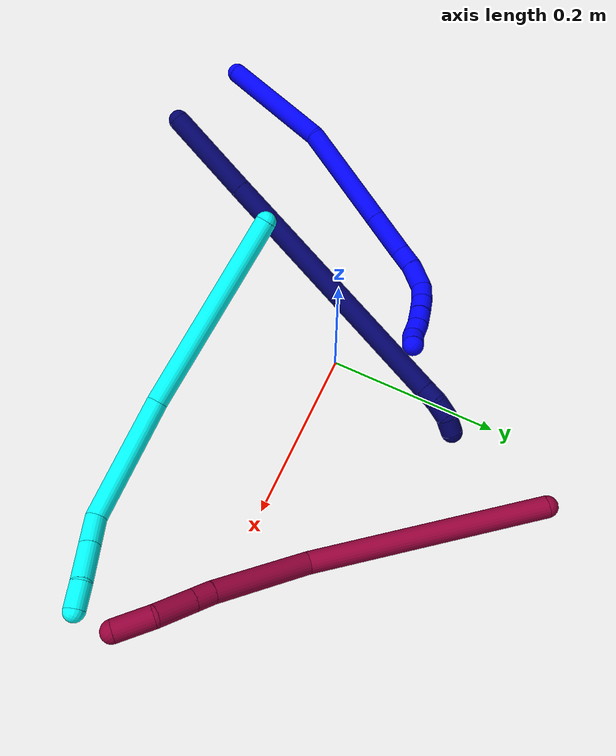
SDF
<sdf version="1.7">
 <world name="default">
  <model name="photoneo_s_sensor">
   <static>1</static>
   <pose>0 0 2 1.57079 1.57079 3.14159</pose>
   <link name="link">
    <inertial><mass>0.1</mass></inertial>
    <sensor name="sensor" type="depth">
     <update_rate>30</update_rate>
     <camera>
      <horizontal_fov>1.22</horizontal_fov>
      <image><width>1920</width><height>1200</height><format>B8G8R8</format></image>
      <clip><near>0.1</near><far>4</far></clip>
      <depth_camera><output>points</output></depth_camera>
     </camera>
     <plugin name="camera_plugin" filename="libgazebo_ros_depth_camera.so">
      <baseline>0.2</baseline>
      <alwaysOn>1</alwaysOn>
      <updateRate>0.0</updateRate>
      <cameraName>camera_ir</cameraName>
      <imageTopicName>/camera/color/image_raw</imageTopicName>
      <cameraInfoTopicName>/camera/color/camera_info</cameraInfoTopicName>
      <depthImageTopicName>/camera/depth/image_raw</depthImageTopicName>
      <depthImageCameraInfoTopicName>/camera/depth/camera_info</depthImageCameraInfoTopicName>
      <pointCloudTopicName>/camera/depth/points</pointCloudTopicName>
      <frameName>fr_optical</frameName>
      <pointCloudCutoff>0.1</pointCloudCutoff>
      <pointCloudCutoffMax>2.0</pointCloudCutoffMax>
      <distortionK1>0</distortionK1>
      <distortionK2>0</distortionK2>
      <distortionK3>0</distortionK3>
      <distortionT1>0</distortionT1>
      <distortionT2>0</distortionT2>
      <CxPrime>0</CxPrime>
      <Cx>0</Cx>
      <Cy>0</Cy>
      <focalLength>0</focalLength>
      <hackBaseline>0</hackBaseline>
     </plugin>
    </sensor>
   </link>
  </model>
  <model name="bin">
   <static>1</static>
   <link name="bottom">
    <collision name="collision-bottom">
     <pose>0 0 -0.01 0 -0 0</pose>
     <geometry><box><size>0.8 0.6 0.02</size></box></geometry>
     <surface>
      <friction><ode><mu>100</mu><mu2>100</mu2></ode></friction>
      <contact><collide_bitmask>65535</collide_bitmask></contact>
     </surface>
    </collision>
   </link>
   <link name="west_wall">
    <collision name="collision-west_wall">
     <pose>-0.41 0 0.1 0 -0 0</pose>
     <geometry><box><size>0.02 0.6 0.2</size></box></geometry>
     <surface>
      <friction><ode><mu>100</mu><mu2>100</mu2></ode></friction>
      <contact><collide_bitmask>65535</collide_bitmask></contact>
     </surface>
    </collision>
   </link>
   <link name="east_wall">
    <collision name="collision-east_wall">
     <pose>0.41 0 0.1 0 -0 0</pose>
     <geometry><box><size>0.02 0.6 0.2</size></box></geometry>
     <surface>
      <friction><ode><mu>100</mu><mu2>100</mu2></ode></friction>
      <contact><collide_bitmask>65535</collide_bitmask></contact>
     </surface>
    </collision>
   </link>
   <link name="south_wall">
    <collision name="collision-south_wall">
     <pose>0 -0.31 0.1 0 -0 0</pose>
     <geometry><box><size>0.8 0.02 0.2</size></box></geometry>
     <surface>
      <friction><ode><mu>100</mu><mu2>100</mu2></ode></friction>
      <contact><collide_bitmask>65535</collide_bitmask></contact>
     </surface>
    </collision>
   </link>
   <link name="north_wall">
    <collision name="collision-north_wall">
     <pose>0 0.31 0.1 0 -0 0</pose>
     <geometry><box><size>0.8 0.02 0.2</size></box></geometry>
     <surface>
      <friction><ode><mu>100</mu><mu2>100</mu2></ode></friction>
      <contact><collide_bitmask>65535</collide_bitmask></contact>
     </surface>
    </collision>
   </link>
  </model>
  <model name="1">
   <static>0</static>
   <link name="1">
    <collision name="collision-cylinder-e_1_1_4">
     <pose>0.00219 0.005585 -0.075692 -3.06794 0.028842 -0.746268</pose>
     <geometry><cylinder><radius>0.0125</radius><length>0.151858</length></cylinder></geometry>
     <surface>
      <friction><ode><mu>1.16</mu><mu2>1.16</mu2><slip1>0</slip1><slip2>0</slip2></ode></friction>
      <contact><ode><kp>1e+06</kp><kd>1</kd><max_vel>0</max_vel><min_depth>0.001</min_depth></ode></contact>
     </surface>
    </collision>
    <visual name="visual-cylinder-e_1_1_4">
     <pose>0.00219 0.005585 -0.075692 -3.06794 0.028842 -0.746268</pose>
     <geometry><cylinder><radius>0.0125</radius><length>0.151858</length></cylinder></geometry>
     <material><ambient>0 0 1 1</ambient></material>
    </visual>
    <collision name="collision-cylinder-e_2_4_5">
     <pose>0.018191 0.00064 -0.21612 2.98035 0.207553 1.82202</pose>
     <geometry><cylinder><radius>0.0125</radius><length>0.134052</length></cylinder></geometry>
     <surface>
      <friction><ode><mu>1.16</mu><mu2>1.16</mu2><slip1>0</slip1><slip2>0</slip2></ode></friction>
      <contact><ode><kp>1e+06</kp><kd>1</kd><max_vel>0</max_vel><min_depth>0.001</min_depth></ode></contact>
     </surface>
    </collision>
    <visual name="visual-cylinder-e_2_4_5">
     <pose>0.018191 0.00064 -0.21612 2.98035 0.207553 1.82202</pose>
     <geometry><cylinder><radius>0.0125</radius><length>0.134052</length></cylinder></geometry>
     <material><ambient>0 0 1 1</ambient></material>
    </visual>
    <collision name="collision-cylinder-e_3_5_6">
     <pose>0.037697 -0.014154 -0.307388 2.98225 0.208814 1.83939</pose>
     <geometry><cylinder><radius>0.0125</radius><length>0.054936</length></cylinder></geometry>
     <surface>
      <friction><ode><mu>1.16</mu><mu2>1.16</mu2><slip1>0</slip1><slip2>0</slip2></ode></friction>
      <contact><ode><kp>1e+06</kp><kd>1</kd><max_vel>0</max_vel><min_depth>0.001</min_depth></ode></contact>
     </surface>
    </collision>
    <visual name="visual-cylinder-e_3_5_6">
     <pose>0.037697 -0.014154 -0.307388 2.98225 0.208814 1.83939</pose>
     <geometry><cylinder><radius>0.0125</radius><length>0.054936</length></cylinder></geometry>
     <material><ambient>0 0 1 1</ambient></material>
    </visual>
    <collision name="collision-cylinder-e_4_6_7">
     <pose>0.046482 -0.016706 -0.346055 -3.00151 0.247018 -2.11281</pose>
     <geometry><cylinder><radius>0.0125</radius><length>0.025281</length></cylinder></geometry>
     <surface>
      <friction><ode><mu>1.16</mu><mu2>1.16</mu2><slip1>0</slip1><slip2>0</slip2></ode></friction>
      <contact><ode><kp>1e+06</kp><kd>1</kd><max_vel>0</max_vel><min_depth>0.001</min_depth></ode></contact>
     </surface>
    </collision>
    <visual name="visual-cylinder-e_4_6_7">
     <pose>0.046482 -0.016706 -0.346055 -3.00151 0.247018 -2.11281</pose>
     <geometry><cylinder><radius>0.0125</radius><length>0.025281</length></cylinder></geometry>
     <material><ambient>0 0 1 1</ambient></material>
    </visual>
    <collision name="collision-cylinder-e_5_7_8">
     <pose>0.056518 -0.013512 -0.372888 -3.04106 0.439521 -2.69854</pose>
     <geometry><cylinder><radius>0.0125</radius><length>0.032644</length></cylinder></geometry>
     <surface>
      <friction><ode><mu>1.16</mu><mu2>1.16</mu2><slip1>0</slip1><slip2>0</slip2></ode></friction>
      <contact><ode><kp>1e+06</kp><kd>1</kd><max_vel>0</max_vel><min_depth>0.001</min_depth></ode></contact>
     </surface>
    </collision>
    <visual name="visual-cylinder-e_5_7_8">
     <pose>0.056518 -0.013512 -0.372888 -3.04106 0.439521 -2.69854</pose>
     <geometry><cylinder><radius>0.0125</radius><length>0.032644</length></cylinder></geometry>
     <material><ambient>0 0 1 1</ambient></material>
    </visual>
    <collision name="collision-cylinder-e_6_8_9">
     <pose>0.070556 -0.0082 -0.394276 -2.62172 0.743742 -1.94463</pose>
     <geometry><cylinder><radius>0.0125</radius><length>0.020954</length></cylinder></geometry>
     <surface>
      <friction><ode><mu>1.16</mu><mu2>1.16</mu2><slip1>0</slip1><slip2>0</slip2></ode></friction>
      <contact><ode><kp>1e+06</kp><kd>1</kd><max_vel>0</max_vel><min_depth>0.001</min_depth></ode></contact>
     </surface>
    </collision>
    <visual name="visual-cylinder-e_6_8_9">
     <pose>0.070556 -0.0082 -0.394276 -2.62172 0.743742 -1.94463</pose>
     <geometry><cylinder><radius>0.0125</radius><length>0.020954</length></cylinder></geometry>
     <material><ambient>0 0 1 1</ambient></material>
    </visual>
    <collision name="collision-cylinder-e_7_9_10">
     <pose>0.084918 0.00016 -0.406292 -2.4367 0.804859 -1.71637</pose>
     <geometry><cylinder><radius>0.0125</radius><length>0.020168</length></cylinder></geometry>
     <surface>
      <friction><ode><mu>1.16</mu><mu2>1.16</mu2><slip1>0</slip1><slip2>0</slip2></ode></friction>
      <contact><ode><kp>1e+06</kp><kd>1</kd><max_vel>0</max_vel><min_depth>0.001</min_depth></ode></contact>
     </surface>
    </collision>
    <visual name="visual-cylinder-e_7_9_10">
     <pose>0.084918 0.00016 -0.406292 -2.4367 0.804859 -1.71637</pose>
     <geometry><cylinder><radius>0.0125</radius><length>0.020168</length></cylinder></geometry>
     <material><ambient>0 0 1 1</ambient></material>
    </visual>
    <collision name="collision-cylinder-e_8_10_11">
     <pose>0.099942 0.008403 -0.416784 -2.51842 0.883781 -1.94616</pose>
     <geometry><cylinder><radius>0.0125</radius><length>0.020064</length></cylinder></geometry>
     <surface>
      <friction><ode><mu>1.16</mu><mu2>1.16</mu2><slip1>0</slip1><slip2>0</slip2></ode></friction>
      <contact><ode><kp>1e+06</kp><kd>1</kd><max_vel>0</max_vel><min_depth>0.001</min_depth></ode></contact>
     </surface>
    </collision>
    <visual name="visual-cylinder-e_8_10_11">
     <pose>0.099942 0.008403 -0.416784 -2.51842 0.883781 -1.94616</pose>
     <geometry><cylinder><radius>0.0125</radius><length>0.020064</length></cylinder></geometry>
     <material><ambient>0 0 1 1</ambient></material>
    </visual>
    <collision name="collision-cylinder-e_9_11_12">
     <pose>0.115711 0.01677 -0.425735 -2.25349 0.928219 -1.62166</pose>
     <geometry><cylinder><radius>0.0125</radius><length>0.020019</length></cylinder></geometry>
     <surface>
      <friction><ode><mu>1.16</mu><mu2>1.16</mu2><slip1>0</slip1><slip2>0</slip2></ode></friction>
      <contact><ode><kp>1e+06</kp><kd>1</kd><max_vel>0</max_vel><min_depth>0.001</min_depth></ode></contact>
     </surface>
    </collision>
    <visual name="visual-cylinder-e_9_11_12">
     <pose>0.115711 0.01677 -0.425735 -2.25349 0.928219 -1.62166</pose>
     <geometry><cylinder><radius>0.0125</radius><length>0.020019</length></cylinder></geometry>
     <material><ambient>0 0 1 1</ambient></material>
    </visual>
    <collision name="collision-cylinder-e_10_12_2">
     <pose>0.12928 0.027926 -0.434724 -2.24594 0.588289 -1.12525</pose>
     <geometry><cylinder><radius>0.0125</radius><length>0.020023</length></cylinder></geometry>
     <surface>
      <friction><ode><mu>1.16</mu><mu2>1.16</mu2><slip1>0</slip1><slip2>0</slip2></ode></friction>
      <contact><ode><kp>1e+06</kp><kd>1</kd><max_vel>0</max_vel><min_depth>0.001</min_depth></ode></contact>
     </surface>
    </collision>
    <visual name="visual-cylinder-e_10_12_2">
     <pose>0.12928 0.027926 -0.434724 -2.24594 0.588289 -1.12525</pose>
     <geometry><cylinder><radius>0.0125</radius><length>0.020023</length></cylinder></geometry>
     <material><ambient>0 0 1 1</ambient></material>
    </visual>
    <collision name="collision-sphere-2">
     <pose>0.134836 0.034427 -0.43993 0 -0 0</pose>
     <geometry><sphere><radius>0.0125</radius></sphere></geometry>
     <surface>
      <friction><ode><mu>1.16</mu><mu2>1.16</mu2><slip1>0</slip1><slip2>0</slip2></ode></friction>
      <contact><ode><kp>1e+06</kp><kd>1</kd><max_vel>0</max_vel><min_depth>0.001</min_depth></ode></contact>
     </surface>
    </collision>
    <visual name="visual-sphere-2">
     <pose>0.134836 0.034427 -0.43993 0 -0 0</pose>
     <geometry><sphere><radius>0.0125</radius></sphere></geometry>
     <material><ambient>0 0 1 1</ambient></material>
    </visual>
    <collision name="collision-sphere-12">
     <pose>0.123725 0.021424 -0.429519 0 -0 0</pose>
     <geometry><sphere><radius>0.0125</radius></sphere></geometry>
     <surface>
      <friction><ode><mu>1.16</mu><mu2>1.16</mu2><slip1>0</slip1><slip2>0</slip2></ode></friction>
      <contact><ode><kp>1e+06</kp><kd>1</kd><max_vel>0</max_vel><min_depth>0.001</min_depth></ode></contact>
     </surface>
    </collision>
    <visual name="visual-sphere-12">
     <pose>0.123725 0.021424 -0.429519 0 -0 0</pose>
     <geometry><sphere><radius>0.0125</radius></sphere></geometry>
     <material><ambient>0 0 1 1</ambient></material>
    </visual>
    <collision name="collision-sphere-11">
     <pose>0.107698 0.012116 -0.42195 0 -0 0</pose>
     <geometry><sphere><radius>0.0125</radius></sphere></geometry>
     <surface>
      <friction><ode><mu>1.16</mu><mu2>1.16</mu2><slip1>0</slip1><slip2>0</slip2></ode></friction>
      <contact><ode><kp>1e+06</kp><kd>1</kd><max_vel>0</max_vel><min_depth>0.001</min_depth></ode></contact>
     </surface>
    </collision>
    <visual name="visual-sphere-11">
     <pose>0.107698 0.012116 -0.42195 0 -0 0</pose>
     <geometry><sphere><radius>0.0125</radius></sphere></geometry>
     <material><ambient>0 0 1 1</ambient></material>
    </visual>
    <collision name="collision-sphere-10">
     <pose>0.092186 0.00469 -0.411617 0 -0 0</pose>
     <geometry><sphere><radius>0.0125</radius></sphere></geometry>
     <surface>
      <friction><ode><mu>1.16</mu><mu2>1.16</mu2><slip1>0</slip1><slip2>0</slip2></ode></friction>
      <contact><ode><kp>1e+06</kp><kd>1</kd><max_vel>0</max_vel><min_depth>0.001</min_depth></ode></contact>
     </surface>
    </collision>
    <visual name="visual-sphere-10">
     <pose>0.092186 0.00469 -0.411617 0 -0 0</pose>
     <geometry><sphere><radius>0.0125</radius></sphere></geometry>
     <material><ambient>0 0 1 1</ambient></material>
    </visual>
    <collision name="collision-sphere-9">
     <pose>0.07765 -0.004369 -0.400968 0 -0 0</pose>
     <geometry><sphere><radius>0.0125</radius></sphere></geometry>
     <surface>
      <friction><ode><mu>1.16</mu><mu2>1.16</mu2><slip1>0</slip1><slip2>0</slip2></ode></friction>
      <contact><ode><kp>1e+06</kp><kd>1</kd><max_vel>0</max_vel><min_depth>0.001</min_depth></ode></contact>
     </surface>
    </collision>
    <visual name="visual-sphere-9">
     <pose>0.07765 -0.004369 -0.400968 0 -0 0</pose>
     <geometry><sphere><radius>0.0125</radius></sphere></geometry>
     <material><ambient>0 0 1 1</ambient></material>
    </visual>
    <collision name="collision-sphere-4">
     <pose>0.004379 0.011169 -0.151384 0 -0 0</pose>
     <geometry><sphere><radius>0.0125</radius></sphere></geometry>
     <surface>
      <friction><ode><mu>1.16</mu><mu2>1.16</mu2><slip1>0</slip1><slip2>0</slip2></ode></friction>
      <contact><ode><kp>1e+06</kp><kd>1</kd><max_vel>0</max_vel><min_depth>0.001</min_depth></ode></contact>
     </surface>
    </collision>
    <visual name="visual-sphere-4">
     <pose>0.004379 0.011169 -0.151384 0 -0 0</pose>
     <geometry><sphere><radius>0.0125</radius></sphere></geometry>
     <material><ambient>0 0 1 1</ambient></material>
    </visual>
    <collision name="collision-sphere-1">
     <geometry><sphere><radius>0.0125</radius></sphere></geometry>
     <surface>
      <friction><ode><mu>1.16</mu><mu2>1.16</mu2><slip1>0</slip1><slip2>0</slip2></ode></friction>
      <contact><ode><kp>1e+06</kp><kd>1</kd><max_vel>0</max_vel><min_depth>0.001</min_depth></ode></contact>
     </surface>
    </collision>
    <visual name="visual-sphere-1">
     <geometry><sphere><radius>0.0125</radius></sphere></geometry>
     <material><ambient>0 0 1 1</ambient></material>
    </visual>
    <collision name="collision-sphere-8">
     <pose>0.063463 -0.01203 -0.387584 0 -0 0</pose>
     <geometry><sphere><radius>0.0125</radius></sphere></geometry>
     <surface>
      <friction><ode><mu>1.16</mu><mu2>1.16</mu2><slip1>0</slip1><slip2>0</slip2></ode></friction>
      <contact><ode><kp>1e+06</kp><kd>1</kd><max_vel>0</max_vel><min_depth>0.001</min_depth></ode></contact>
     </surface>
    </collision>
    <visual name="visual-sphere-8">
     <pose>0.063463 -0.01203 -0.387584 0 -0 0</pose>
     <geometry><sphere><radius>0.0125</radius></sphere></geometry>
     <material><ambient>0 0 1 1</ambient></material>
    </visual>
    <collision name="collision-sphere-5">
     <pose>0.032003 -0.00989 -0.280857 0 -0 0</pose>
     <geometry><sphere><radius>0.0125</radius></sphere></geometry>
     <surface>
      <friction><ode><mu>1.16</mu><mu2>1.16</mu2><slip1>0</slip1><slip2>0</slip2></ode></friction>
      <contact><ode><kp>1e+06</kp><kd>1</kd><max_vel>0</max_vel><min_depth>0.001</min_depth></ode></contact>
     </surface>
    </collision>
    <visual name="visual-sphere-5">
     <pose>0.032003 -0.00989 -0.280857 0 -0 0</pose>
     <geometry><sphere><radius>0.0125</radius></sphere></geometry>
     <material><ambient>0 0 1 1</ambient></material>
    </visual>
    <collision name="collision-sphere-6">
     <pose>0.043391 -0.018418 -0.333919 0 -0 0</pose>
     <geometry><sphere><radius>0.0125</radius></sphere></geometry>
     <surface>
      <friction><ode><mu>1.16</mu><mu2>1.16</mu2><slip1>0</slip1><slip2>0</slip2></ode></friction>
      <contact><ode><kp>1e+06</kp><kd>1</kd><max_vel>0</max_vel><min_depth>0.001</min_depth></ode></contact>
     </surface>
    </collision>
    <visual name="visual-sphere-6">
     <pose>0.043391 -0.018418 -0.333919 0 -0 0</pose>
     <geometry><sphere><radius>0.0125</radius></sphere></geometry>
     <material><ambient>0 0 1 1</ambient></material>
    </visual>
    <collision name="collision-sphere-7">
     <pose>0.049573 -0.014995 -0.358192 0 -0 0</pose>
     <geometry><sphere><radius>0.0125</radius></sphere></geometry>
     <surface>
      <friction><ode><mu>1.16</mu><mu2>1.16</mu2><slip1>0</slip1><slip2>0</slip2></ode></friction>
      <contact><ode><kp>1e+06</kp><kd>1</kd><max_vel>0</max_vel><min_depth>0.001</min_depth></ode></contact>
     </surface>
    </collision>
    <visual name="visual-sphere-7">
     <pose>0.049573 -0.014995 -0.358192 0 -0 0</pose>
     <geometry><sphere><radius>0.0125</radius></sphere></geometry>
     <material><ambient>0 0 1 1</ambient></material>
    </visual>
    <inertial>
     <pose>0.035927 0.000375 -0.240639 0 -0 0</pose>
     <mass>0.5</mass>
     <inertia>
      <ixx>0.00017</ixx>
      <ixy>0</ixy>
      <ixz>0</ixz>
      <iyy>-0.000144</iyy>
      <iyz>0</iyz>
      <izz>-8.7e-05</izz>
     </inertia>
    </inertial>
   </link>
   <pose>-0.314056 -0.288502 0.029176 1.59226 0.15198 -0.334648</pose>
  </model>
  <model name="3">
   <static>0</static>
   <link name="3">
    <collision name="collision-cylinder-e_1_1_4">
     <pose>0.027877 -0.010878 0.118489 0.091551 0.230136 0.010589</pose>
     <geometry><cylinder><radius>0.0125</radius><length>0.244419</length></cylinder></geometry>
     <surface>
      <friction><ode><mu>1.16</mu><mu2>1.16</mu2><slip1>0</slip1><slip2>0</slip2></ode></friction>
      <contact><ode><kp>1e+06</kp><kd>1</kd><max_vel>0</max_vel><min_depth>0.001</min_depth></ode></contact>
     </surface>
    </collision>
    <visual name="visual-cylinder-e_1_1_4">
     <pose>0.027877 -0.010878 0.118489 0.091551 0.230136 0.010589</pose>
     <geometry><cylinder><radius>0.0125</radius><length>0.244419</length></cylinder></geometry>
     <material><ambient>0.003922 1 0.996078 1</ambient></material>
    </visual>
    <collision name="collision-cylinder-e_2_4_5">
     <pose>0.046719 -0.025692 0.309992 0.053844 -0.12295 -0.003315</pose>
     <geometry><cylinder><radius>0.0125</radius><length>0.147352</length></cylinder></geometry>
     <surface>
      <friction><ode><mu>1.16</mu><mu2>1.16</mu2><slip1>0</slip1><slip2>0</slip2></ode></friction>
      <contact><ode><kp>1e+06</kp><kd>1</kd><max_vel>0</max_vel><min_depth>0.001</min_depth></ode></contact>
     </surface>
    </collision>
    <visual name="visual-cylinder-e_2_4_5">
     <pose>0.046719 -0.025692 0.309992 0.053844 -0.12295 -0.003315</pose>
     <geometry><cylinder><radius>0.0125</radius><length>0.147352</length></cylinder></geometry>
     <material><ambient>0.003922 1 0.996078 1</ambient></material>
    </visual>
    <collision name="collision-cylinder-e_3_5_6">
     <pose>0.028772 -0.026774 0.397745 -0.19117 -0.535663 0.05261</pose>
     <geometry><cylinder><radius>0.0125</radius><length>0.034916</length></cylinder></geometry>
     <surface>
      <friction><ode><mu>1.16</mu><mu2>1.16</mu2><slip1>0</slip1><slip2>0</slip2></ode></friction>
      <contact><ode><kp>1e+06</kp><kd>1</kd><max_vel>0</max_vel><min_depth>0.001</min_depth></ode></contact>
     </surface>
    </collision>
    <visual name="visual-cylinder-e_3_5_6">
     <pose>0.028772 -0.026774 0.397745 -0.19117 -0.535663 0.05261</pose>
     <geometry><cylinder><radius>0.0125</radius><length>0.034916</length></cylinder></geometry>
     <material><ambient>0.003922 1 0.996078 1</ambient></material>
    </visual>
    <collision name="collision-cylinder-e_4_6_7">
     <pose>0.008912 -0.020369 0.430608 -0.193549 -0.535142 0.053214</pose>
     <geometry><cylinder><radius>0.0125</radius><length>0.042942</length></cylinder></geometry>
     <surface>
      <friction><ode><mu>1.16</mu><mu2>1.16</mu2><slip1>0</slip1><slip2>0</slip2></ode></friction>
      <contact><ode><kp>1e+06</kp><kd>1</kd><max_vel>0</max_vel><min_depth>0.001</min_depth></ode></contact>
     </surface>
    </collision>
    <visual name="visual-cylinder-e_4_6_7">
     <pose>0.008912 -0.020369 0.430608 -0.193549 -0.535142 0.053214</pose>
     <geometry><cylinder><radius>0.0125</radius><length>0.042942</length></cylinder></geometry>
     <material><ambient>0.003922 1 0.996078 1</ambient></material>
    </visual>
    <collision name="collision-cylinder-e_5_7_2">
     <pose>-0.006669 -0.014187 0.462953 -0.182887 -0.309971 0.028652</pose>
     <geometry><cylinder><radius>0.0125</radius><length>0.030372</length></cylinder></geometry>
     <surface>
      <friction><ode><mu>1.16</mu><mu2>1.16</mu2><slip1>0</slip1><slip2>0</slip2></ode></friction>
      <contact><ode><kp>1e+06</kp><kd>1</kd><max_vel>0</max_vel><min_depth>0.001</min_depth></ode></contact>
     </surface>
    </collision>
    <visual name="visual-cylinder-e_5_7_2">
     <pose>-0.006669 -0.014187 0.462953 -0.182887 -0.309971 0.028652</pose>
     <geometry><cylinder><radius>0.0125</radius><length>0.030372</length></cylinder></geometry>
     <material><ambient>0.003922 1 0.996078 1</ambient></material>
    </visual>
    <collision name="collision-sphere-2">
     <pose>-0.011301 -0.011556 0.477175 0 -0 0</pose>
     <geometry><sphere><radius>0.0125</radius></sphere></geometry>
     <surface>
      <friction><ode><mu>1.16</mu><mu2>1.16</mu2><slip1>0</slip1><slip2>0</slip2></ode></friction>
      <contact><ode><kp>1e+06</kp><kd>1</kd><max_vel>0</max_vel><min_depth>0.001</min_depth></ode></contact>
     </surface>
    </collision>
    <visual name="visual-sphere-2">
     <pose>-0.011301 -0.011556 0.477175 0 -0 0</pose>
     <geometry><sphere><radius>0.0125</radius></sphere></geometry>
     <material><ambient>0.003922 1 0.996078 1</ambient></material>
    </visual>
    <collision name="collision-sphere-7">
     <pose>-0.002037 -0.016817 0.448732 0 -0 0</pose>
     <geometry><sphere><radius>0.0125</radius></sphere></geometry>
     <surface>
      <friction><ode><mu>1.16</mu><mu2>1.16</mu2><slip1>0</slip1><slip2>0</slip2></ode></friction>
      <contact><ode><kp>1e+06</kp><kd>1</kd><max_vel>0</max_vel><min_depth>0.001</min_depth></ode></contact>
     </surface>
    </collision>
    <visual name="visual-sphere-7">
     <pose>-0.002037 -0.016817 0.448732 0 -0 0</pose>
     <geometry><sphere><radius>0.0125</radius></sphere></geometry>
     <material><ambient>0.003922 1 0.996078 1</ambient></material>
    </visual>
    <collision name="collision-sphere-6">
     <pose>0.019862 -0.023922 0.412484 0 -0 0</pose>
     <geometry><sphere><radius>0.0125</radius></sphere></geometry>
     <surface>
      <friction><ode><mu>1.16</mu><mu2>1.16</mu2><slip1>0</slip1><slip2>0</slip2></ode></friction>
      <contact><ode><kp>1e+06</kp><kd>1</kd><max_vel>0</max_vel><min_depth>0.001</min_depth></ode></contact>
     </surface>
    </collision>
    <visual name="visual-sphere-6">
     <pose>0.019862 -0.023922 0.412484 0 -0 0</pose>
     <geometry><sphere><radius>0.0125</radius></sphere></geometry>
     <material><ambient>0.003922 1 0.996078 1</ambient></material>
    </visual>
    <collision name="collision-sphere-5">
     <pose>0.037683 -0.029627 0.383006 0 -0 0</pose>
     <geometry><sphere><radius>0.0125</radius></sphere></geometry>
     <surface>
      <friction><ode><mu>1.16</mu><mu2>1.16</mu2><slip1>0</slip1><slip2>0</slip2></ode></friction>
      <contact><ode><kp>1e+06</kp><kd>1</kd><max_vel>0</max_vel><min_depth>0.001</min_depth></ode></contact>
     </surface>
    </collision>
    <visual name="visual-sphere-5">
     <pose>0.037683 -0.029627 0.383006 0 -0 0</pose>
     <geometry><sphere><radius>0.0125</radius></sphere></geometry>
     <material><ambient>0.003922 1 0.996078 1</ambient></material>
    </visual>
    <collision name="collision-sphere-1">
     <geometry><sphere><radius>0.0125</radius></sphere></geometry>
     <surface>
      <friction><ode><mu>1.16</mu><mu2>1.16</mu2><slip1>0</slip1><slip2>0</slip2></ode></friction>
      <contact><ode><kp>1e+06</kp><kd>1</kd><max_vel>0</max_vel><min_depth>0.001</min_depth></ode></contact>
     </surface>
    </collision>
    <visual name="visual-sphere-1">
     <geometry><sphere><radius>0.0125</radius></sphere></geometry>
     <material><ambient>0.003922 1 0.996078 1</ambient></material>
    </visual>
    <collision name="collision-sphere-4">
     <pose>0.055754 -0.021756 0.236978 0 -0 0</pose>
     <geometry><sphere><radius>0.0125</radius></sphere></geometry>
     <surface>
      <friction><ode><mu>1.16</mu><mu2>1.16</mu2><slip1>0</slip1><slip2>0</slip2></ode></friction>
      <contact><ode><kp>1e+06</kp><kd>1</kd><max_vel>0</max_vel><min_depth>0.001</min_depth></ode></contact>
     </surface>
    </collision>
    <visual name="visual-sphere-4">
     <pose>0.055754 -0.021756 0.236978 0 -0 0</pose>
     <geometry><sphere><radius>0.0125</radius></sphere></geometry>
     <material><ambient>0.003922 1 0.996078 1</ambient></material>
    </visual>
    <inertial>
     <pose>0.029765 -0.01737 0.242156 0 -0 0</pose>
     <mass>0.5</mass>
     <inertia><ixx>0.001491</ixx><ixy>0</ixy><ixz>0</ixz><iyy>0.001521</iyy><iyz>0</iyz><izz>-8e-05</izz></inertia>
    </inertial>
   </link>
   <pose>-0.08828 -0.131343 0.100443 -2.03067 1.1931 -1.97364</pose>
  </model>
  <model name="7">
   <static>0</static>
   <link name="7">
    <collision name="collision-cylinder-e_1_1_4">
     <pose>0.025348 0.04501 -0.026652 -2.10541 0.45124 -0.765589</pose>
     <geometry><cylinder><radius>0.0125</radius><length>0.116255</length></cylinder></geometry>
     <surface>
      <friction><ode><mu>1.16</mu><mu2>1.16</mu2><slip1>0</slip1><slip2>0</slip2></ode></friction>
      <contact><ode><kp>1e+06</kp><kd>1</kd><max_vel>0</max_vel><min_depth>0.001</min_depth></ode></contact>
     </surface>
    </collision>
    <visual name="visual-cylinder-e_1_1_4">
     <pose>0.025348 0.04501 -0.026652 -2.10541 0.45124 -0.765589</pose>
     <geometry><cylinder><radius>0.0125</radius><length>0.116255</length></cylinder></geometry>
     <material><ambient>0.003922 0 0.403922 1</ambient></material>
    </visual>
    <collision name="collision-cylinder-e_2_4_5">
     <pose>0.122808 0.216738 -0.123131 -2.07444 0.462377 -0.758401</pose>
     <geometry><cylinder><radius>0.0125</radius><length>0.323316</length></cylinder></geometry>
     <surface>
      <friction><ode><mu>1.16</mu><mu2>1.16</mu2><slip1>0</slip1><slip2>0</slip2></ode></friction>
      <contact><ode><kp>1e+06</kp><kd>1</kd><max_vel>0</max_vel><min_depth>0.001</min_depth></ode></contact>
     </surface>
    </collision>
    <visual name="visual-cylinder-e_2_4_5">
     <pose>0.122808 0.216738 -0.123131 -2.07444 0.462377 -0.758401</pose>
     <geometry><cylinder><radius>0.0125</radius><length>0.323316</length></cylinder></geometry>
     <material><ambient>0.003922 0 0.403922 1</ambient></material>
    </visual>
    <collision name="collision-cylinder-e_3_5_6">
     <pose>0.200161 0.351536 -0.19596 -1.92653 0.546279 -0.766069</pose>
     <geometry><cylinder><radius>0.0125</radius><length>0.020176</length></cylinder></geometry>
     <surface>
      <friction><ode><mu>1.16</mu><mu2>1.16</mu2><slip1>0</slip1><slip2>0</slip2></ode></friction>
      <contact><ode><kp>1e+06</kp><kd>1</kd><max_vel>0</max_vel><min_depth>0.001</min_depth></ode></contact>
     </surface>
    </collision>
    <visual name="visual-cylinder-e_3_5_6">
     <pose>0.200161 0.351536 -0.19596 -1.92653 0.546279 -0.766069</pose>
     <geometry><cylinder><radius>0.0125</radius><length>0.020176</length></cylinder></geometry>
     <material><ambient>0.003922 0 0.403922 1</ambient></material>
    </visual>
    <collision name="collision-cylinder-e_4_6_7">
     <pose>0.210316 0.366244 -0.204659 -2.28084 0.512252 -1.0368</pose>
     <geometry><cylinder><radius>0.0125</radius><length>0.020053</length></cylinder></geometry>
     <surface>
      <friction><ode><mu>1.16</mu><mu2>1.16</mu2><slip1>0</slip1><slip2>0</slip2></ode></friction>
      <contact><ode><kp>1e+06</kp><kd>1</kd><max_vel>0</max_vel><min_depth>0.001</min_depth></ode></contact>
     </surface>
    </collision>
    <visual name="visual-cylinder-e_4_6_7">
     <pose>0.210316 0.366244 -0.204659 -2.28084 0.512252 -1.0368</pose>
     <geometry><cylinder><radius>0.0125</radius><length>0.020053</length></cylinder></geometry>
     <material><ambient>0.003922 0 0.403922 1</ambient></material>
    </visual>
    <collision name="collision-cylinder-e_5_7_2">
     <pose>0.218675 0.376382 -0.219178 -2.76289 0.347956 -1.48433</pose>
     <geometry><cylinder><radius>0.0125</radius><length>0.0202</length></cylinder></geometry>
     <surface>
      <friction><ode><mu>1.16</mu><mu2>1.16</mu2><slip1>0</slip1><slip2>0</slip2></ode></friction>
      <contact><ode><kp>1e+06</kp><kd>1</kd><max_vel>0</max_vel><min_depth>0.001</min_depth></ode></contact>
     </surface>
    </collision>
    <visual name="visual-cylinder-e_5_7_2">
     <pose>0.218675 0.376382 -0.219178 -2.76289 0.347956 -1.48433</pose>
     <geometry><cylinder><radius>0.0125</radius><length>0.0202</length></cylinder></geometry>
     <material><ambient>0.003922 0 0.403922 1</ambient></material>
    </visual>
    <collision name="collision-sphere-2">
     <pose>0.222119 0.379892 -0.228 0 -0 0</pose>
     <geometry><sphere><radius>0.0125</radius></sphere></geometry>
     <surface>
      <friction><ode><mu>1.16</mu><mu2>1.16</mu2><slip1>0</slip1><slip2>0</slip2></ode></friction>
      <contact><ode><kp>1e+06</kp><kd>1</kd><max_vel>0</max_vel><min_depth>0.001</min_depth></ode></contact>
     </surface>
    </collision>
    <visual name="visual-sphere-2">
     <pose>0.222119 0.379892 -0.228 0 -0 0</pose>
     <geometry><sphere><radius>0.0125</radius></sphere></geometry>
     <material><ambient>0.003922 0 0.403922 1</ambient></material>
    </visual>
    <collision name="collision-sphere-7">
     <pose>0.215231 0.372871 -0.210356 0 -0 0</pose>
     <geometry><sphere><radius>0.0125</radius></sphere></geometry>
     <surface>
      <friction><ode><mu>1.16</mu><mu2>1.16</mu2><slip1>0</slip1><slip2>0</slip2></ode></friction>
      <contact><ode><kp>1e+06</kp><kd>1</kd><max_vel>0</max_vel><min_depth>0.001</min_depth></ode></contact>
     </surface>
    </collision>
    <visual name="visual-sphere-7">
     <pose>0.215231 0.372871 -0.210356 0 -0 0</pose>
     <geometry><sphere><radius>0.0125</radius></sphere></geometry>
     <material><ambient>0.003922 0 0.403922 1</ambient></material>
    </visual>
    <collision name="collision-sphere-6">
     <pose>0.205402 0.359616 -0.198962 0 -0 0</pose>
     <geometry><sphere><radius>0.0125</radius></sphere></geometry>
     <surface>
      <friction><ode><mu>1.16</mu><mu2>1.16</mu2><slip1>0</slip1><slip2>0</slip2></ode></friction>
      <contact><ode><kp>1e+06</kp><kd>1</kd><max_vel>0</max_vel><min_depth>0.001</min_depth></ode></contact>
     </surface>
    </collision>
    <visual name="visual-sphere-6">
     <pose>0.205402 0.359616 -0.198962 0 -0 0</pose>
     <geometry><sphere><radius>0.0125</radius></sphere></geometry>
     <material><ambient>0.003922 0 0.403922 1</ambient></material>
    </visual>
    <collision name="collision-sphere-5">
     <pose>0.19492 0.343456 -0.192958 0 -0 0</pose>
     <geometry><sphere><radius>0.0125</radius></sphere></geometry>
     <surface>
      <friction><ode><mu>1.16</mu><mu2>1.16</mu2><slip1>0</slip1><slip2>0</slip2></ode></friction>
      <contact><ode><kp>1e+06</kp><kd>1</kd><max_vel>0</max_vel><min_depth>0.001</min_depth></ode></contact>
     </surface>
    </collision>
    <visual name="visual-sphere-5">
     <pose>0.19492 0.343456 -0.192958 0 -0 0</pose>
     <geometry><sphere><radius>0.0125</radius></sphere></geometry>
     <material><ambient>0.003922 0 0.403922 1</ambient></material>
    </visual>
    <collision name="collision-sphere-1">
     <geometry><sphere><radius>0.0125</radius></sphere></geometry>
     <surface>
      <friction><ode><mu>1.16</mu><mu2>1.16</mu2><slip1>0</slip1><slip2>0</slip2></ode></friction>
      <contact><ode><kp>1e+06</kp><kd>1</kd><max_vel>0</max_vel><min_depth>0.001</min_depth></ode></contact>
     </surface>
    </collision>
    <visual name="visual-sphere-1">
     <geometry><sphere><radius>0.0125</radius></sphere></geometry>
     <material><ambient>0.003922 0 0.403922 1</ambient></material>
    </visual>
    <collision name="collision-sphere-4">
     <pose>0.050697 0.090021 -0.053304 0 -0 0</pose>
     <geometry><sphere><radius>0.0125</radius></sphere></geometry>
     <surface>
      <friction><ode><mu>1.16</mu><mu2>1.16</mu2><slip1>0</slip1><slip2>0</slip2></ode></friction>
      <contact><ode><kp>1e+06</kp><kd>1</kd><max_vel>0</max_vel><min_depth>0.001</min_depth></ode></contact>
     </surface>
    </collision>
    <visual name="visual-sphere-4">
     <pose>0.050697 0.090021 -0.053304 0 -0 0</pose>
     <geometry><sphere><radius>0.0125</radius></sphere></geometry>
     <material><ambient>0.003922 0 0.403922 1</ambient></material>
    </visual>
    <inertial>
     <pose>0.110652 0.194695 -0.110788 0 -0 0</pose>
     <mass>0.5</mass>
     <inertia>
      <ixx>0.000116</ixx>
      <ixy>0</ixy>
      <ixz>0</ixz>
      <iyy>-0.002045</iyy>
      <iyz>0</iyz>
      <izz>-0.003666</izz>
     </inertia>
    </inertial>
   </link>
   <pose>-0.167315 -0.287094 0.108159 0.209036 -0.245648 0.122728</pose>
  </model>
  <model name="8">
   <static>0</static>
   <link name="8">
    <collision name="collision-cylinder-e_1_1_4">
     <pose>0.04838 -0.098869 0.081601 0.880791 0.36087 0.171513</pose>
     <geometry><cylinder><radius>0.0125</radius><length>0.27404</length></cylinder></geometry>
     <surface>
      <friction><ode><mu>1.16</mu><mu2>1.16</mu2><slip1>0</slip1><slip2>0</slip2></ode></friction>
      <contact><ode><kp>1e+06</kp><kd>1</kd><max_vel>0</max_vel><min_depth>0.001</min_depth></ode></contact>
     </surface>
    </collision>
    <visual name="visual-cylinder-e_1_1_4">
     <pose>0.04838 -0.098869 0.081601 0.880791 0.36087 0.171513</pose>
     <geometry><cylinder><radius>0.0125</radius><length>0.27404</length></cylinder></geometry>
     <material><ambient>0.584314 0 0.227451 1</ambient></material>
    </visual>
    <collision name="collision-cylinder-e_2_4_5">
     <pose>0.128177 -0.218514 0.207521 0.438375 0.570625 0.130496</pose>
     <geometry><cylinder><radius>0.0125</radius><length>0.116323</length></cylinder></geometry>
     <surface>
      <friction><ode><mu>1.16</mu><mu2>1.16</mu2><slip1>0</slip1><slip2>0</slip2></ode></friction>
      <contact><ode><kp>1e+06</kp><kd>1</kd><max_vel>0</max_vel><min_depth>0.001</min_depth></ode></contact>
     </surface>
    </collision>
    <visual name="visual-cylinder-e_2_4_5">
     <pose>0.128177 -0.218514 0.207521 0.438375 0.570625 0.130496</pose>
     <geometry><cylinder><radius>0.0125</radius><length>0.116323</length></cylinder></geometry>
     <material><ambient>0.584314 0 0.227451 1</ambient></material>
    </visual>
    <collision name="collision-cylinder-e_3_5_6">
     <pose>0.166546 -0.243079 0.25999 0.435105 0.658363 0.150741</pose>
     <geometry><cylinder><radius>0.0125</radius><length>0.022727</length></cylinder></geometry>
     <surface>
      <friction><ode><mu>1.16</mu><mu2>1.16</mu2><slip1>0</slip1><slip2>0</slip2></ode></friction>
      <contact><ode><kp>1e+06</kp><kd>1</kd><max_vel>0</max_vel><min_depth>0.001</min_depth></ode></contact>
     </surface>
    </collision>
    <visual name="visual-cylinder-e_3_5_6">
     <pose>0.166546 -0.243079 0.25999 0.435105 0.658363 0.150741</pose>
     <geometry><cylinder><radius>0.0125</radius><length>0.022727</length></cylinder></geometry>
     <material><ambient>0.584314 0 0.227451 1</ambient></material>
    </visual>
    <collision name="collision-cylinder-e_4_6_7">
     <pose>0.186996 -0.253994 0.284072 0.420585 0.6583 0.14556</pose>
     <geometry><cylinder><radius>0.0125</radius><length>0.044126</length></cylinder></geometry>
     <surface>
      <friction><ode><mu>1.16</mu><mu2>1.16</mu2><slip1>0</slip1><slip2>0</slip2></ode></friction>
      <contact><ode><kp>1e+06</kp><kd>1</kd><max_vel>0</max_vel><min_depth>0.001</min_depth></ode></contact>
     </surface>
    </collision>
    <visual name="visual-cylinder-e_4_6_7">
     <pose>0.186996 -0.253994 0.284072 0.420585 0.6583 0.14556</pose>
     <geometry><cylinder><radius>0.0125</radius><length>0.044126</length></cylinder></geometry>
     <material><ambient>0.584314 0 0.227451 1</ambient></material>
    </visual>
    <collision name="collision-cylinder-e_5_7_2">
     <pose>0.210689 -0.275063 0.312623 0.835229 0.496823 0.224153</pose>
     <geometry><cylinder><radius>0.0125</radius><length>0.042784</length></cylinder></geometry>
     <surface>
      <friction><ode><mu>1.16</mu><mu2>1.16</mu2><slip1>0</slip1><slip2>0</slip2></ode></friction>
      <contact><ode><kp>1e+06</kp><kd>1</kd><max_vel>0</max_vel><min_depth>0.001</min_depth></ode></contact>
     </surface>
    </collision>
    <visual name="visual-cylinder-e_5_7_2">
     <pose>0.210689 -0.275063 0.312623 0.835229 0.496823 0.224153</pose>
     <geometry><cylinder><radius>0.0125</radius><length>0.042784</length></cylinder></geometry>
     <material><ambient>0.584314 0 0.227451 1</ambient></material>
    </visual>
    <collision name="collision-sphere-2">
     <pose>0.220886 -0.289007 0.325242 0 -0 0</pose>
     <geometry><sphere><radius>0.0125</radius></sphere></geometry>
     <surface>
      <friction><ode><mu>1.16</mu><mu2>1.16</mu2><slip1>0</slip1><slip2>0</slip2></ode></friction>
      <contact><ode><kp>1e+06</kp><kd>1</kd><max_vel>0</max_vel><min_depth>0.001</min_depth></ode></contact>
     </surface>
    </collision>
    <visual name="visual-sphere-2">
     <pose>0.220886 -0.289007 0.325242 0 -0 0</pose>
     <geometry><sphere><radius>0.0125</radius></sphere></geometry>
     <material><ambient>0.584314 0 0.227451 1</ambient></material>
    </visual>
    <collision name="collision-sphere-7">
     <pose>0.200493 -0.26112 0.300004 0 -0 0</pose>
     <geometry><sphere><radius>0.0125</radius></sphere></geometry>
     <surface>
      <friction><ode><mu>1.16</mu><mu2>1.16</mu2><slip1>0</slip1><slip2>0</slip2></ode></friction>
      <contact><ode><kp>1e+06</kp><kd>1</kd><max_vel>0</max_vel><min_depth>0.001</min_depth></ode></contact>
     </surface>
    </collision>
    <visual name="visual-sphere-7">
     <pose>0.200493 -0.26112 0.300004 0 -0 0</pose>
     <geometry><sphere><radius>0.0125</radius></sphere></geometry>
     <material><ambient>0.584314 0 0.227451 1</ambient></material>
    </visual>
    <collision name="collision-sphere-6">
     <pose>0.173498 -0.246868 0.268141 0 -0 0</pose>
     <geometry><sphere><radius>0.0125</radius></sphere></geometry>
     <surface>
      <friction><ode><mu>1.16</mu><mu2>1.16</mu2><slip1>0</slip1><slip2>0</slip2></ode></friction>
      <contact><ode><kp>1e+06</kp><kd>1</kd><max_vel>0</max_vel><min_depth>0.001</min_depth></ode></contact>
     </surface>
    </collision>
    <visual name="visual-sphere-6">
     <pose>0.173498 -0.246868 0.268141 0 -0 0</pose>
     <geometry><sphere><radius>0.0125</radius></sphere></geometry>
     <material><ambient>0.584314 0 0.227451 1</ambient></material>
    </visual>
    <collision name="collision-sphere-5">
     <pose>0.159593 -0.239291 0.251839 0 -0 0</pose>
     <geometry><sphere><radius>0.0125</radius></sphere></geometry>
     <surface>
      <friction><ode><mu>1.16</mu><mu2>1.16</mu2><slip1>0</slip1><slip2>0</slip2></ode></friction>
      <contact><ode><kp>1e+06</kp><kd>1</kd><max_vel>0</max_vel><min_depth>0.001</min_depth></ode></contact>
     </surface>
    </collision>
    <visual name="visual-sphere-5">
     <pose>0.159593 -0.239291 0.251839 0 -0 0</pose>
     <geometry><sphere><radius>0.0125</radius></sphere></geometry>
     <material><ambient>0.584314 0 0.227451 1</ambient></material>
    </visual>
    <collision name="collision-sphere-1">
     <geometry><sphere><radius>0.0125</radius></sphere></geometry>
     <surface>
      <friction><ode><mu>1.16</mu><mu2>1.16</mu2><slip1>0</slip1><slip2>0</slip2></ode></friction>
      <contact><ode><kp>1e+06</kp><kd>1</kd><max_vel>0</max_vel><min_depth>0.001</min_depth></ode></contact>
     </surface>
    </collision>
    <visual name="visual-sphere-1">
     <geometry><sphere><radius>0.0125</radius></sphere></geometry>
     <material><ambient>0.584314 0 0.227451 1</ambient></material>
    </visual>
    <collision name="collision-sphere-4">
     <pose>0.09676 -0.197738 0.163202 0 -0 0</pose>
     <geometry><sphere><radius>0.0125</radius></sphere></geometry>
     <surface>
      <friction><ode><mu>1.16</mu><mu2>1.16</mu2><slip1>0</slip1><slip2>0</slip2></ode></friction>
      <contact><ode><kp>1e+06</kp><kd>1</kd><max_vel>0</max_vel><min_depth>0.001</min_depth></ode></contact>
     </surface>
    </collision>
    <visual name="visual-sphere-4">
     <pose>0.09676 -0.197738 0.163202 0 -0 0</pose>
     <geometry><sphere><radius>0.0125</radius></sphere></geometry>
     <material><ambient>0.584314 0 0.227451 1</ambient></material>
    </visual>
    <inertial>
     <pose>0.098437 -0.162026 0.156641 0 -0 0</pose>
     <mass>0.5</mass>
     <inertia>
      <ixx>0.00203</ixx>
      <ixy>0</ixy>
      <ixz>0</ixz>
      <iyy>0.001575</iyy>
      <iyz>0</iyz>
      <izz>0.000635</izz>
     </inertia>
    </inertial>
   </link>
   <pose>0.062439 0.2885 0.011605 0.778178 -0.233192 0.295939</pose>
  </model>
 </world>
</sdf>
